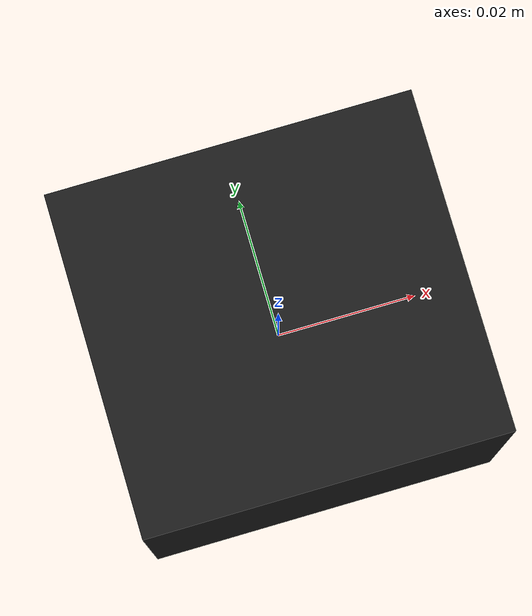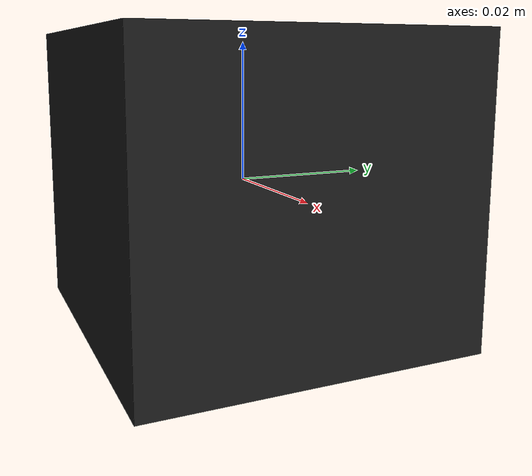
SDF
<?xml version="1.0"?>
<sdf version="1.9">

<!-- SF45/B 2d lidar modeli
    -Menzil: 0,2m-50m
    -Fov: 320 derece
    -lineer Resolution: 1cm
    -horizontal resolution: <0,2 derece
    -accuracy: +-10cm
    -update rate: 50Hz
 -->

  <model name="lidar_2d">
    <static>false</static>
    <link name="lidar_link">
      <pose>0 0 0 0 0 0</pose>

      <inertial>
        <mass>0.059</mass>
        <inertia>
          <ixx>0.00001</ixx>
          <iyy>0.00001</iyy>
          <izz>0.00001</izz>
          <ixy>0.0</ixy>
          <ixz>0.0</ixz>
          <iyz>0.0</iyz>
        </inertia>
      </inertial>

      <visual name="lidar_visual">
        <pose>0 0 0 0 0 0</pose>
        <geometry>
          <box>
            <size>0.0512 0.048 0.0433</size>
          </box>
        </geometry>
        <material>
          <ambient>0.1 0.1 0.1 1</ambient>
          <diffuse>0.1 0.1 0.1 1</diffuse>
        </material>
      </visual>
      <collision name="lidar_collision">
        <pose>0 0 0 0 0 0</pose>
        <geometry>
          <box>
            <size>0.0512 0.048 0.0433</size>
          </box>
        </geometry>
      </collision>

      <sensor name="lidar_2d" type="gpu_lidar">
        <pose>0 0 0.0169 0 0 0</pose>
        <topic>/lidar/scan</topic>
        <update_rate>50</update_rate>

        <lidar>
          <scan>
            <horizontal>
              <samples>120</samples>
              <resolution>1</resolution>
              <min_angle>-1.047</min_angle>
              <max_angle>1.047</max_angle>
            </horizontal>
          </scan>
          <range>
            <min>0.2</min>
            <max>50.0</max>
            <resolution>0.01</resolution>
          </range>
          <noise>
            <type>gaussian</type>
            <mean>0.0</mean>
            <stddev>0.01</stddev>
          </noise>
        </lidar>
        <always_on>1</always_on>
        <visualize>true</visualize>
      </sensor>
    </link>
  </model>
</sdf>
